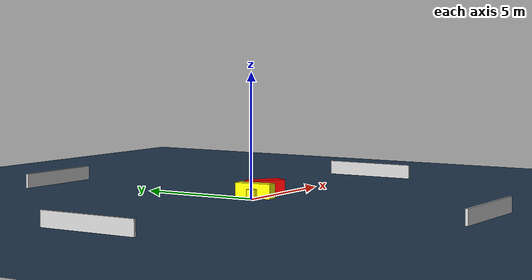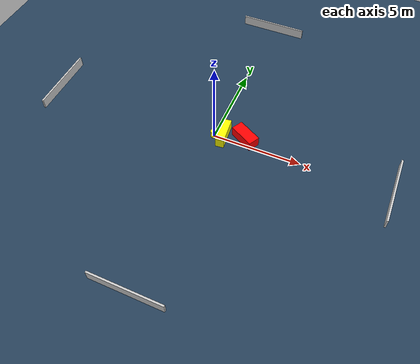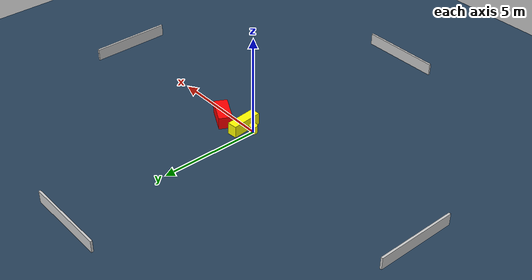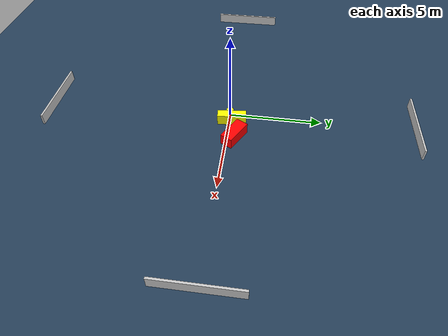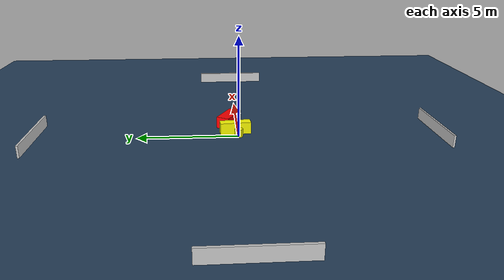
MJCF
<?xml version="1.0" ?>
<mujoco model="generated_environment">
  <option timestep="0.01" integrator="RK4" cone="elliptic"/>
  <default>
    <geom density="1"/>
  </default>
  <asset>
    <texture builtin="gradient" height="3072" name="skybox" rgb1="0.3 0.5 0.7" rgb2="0 0 0" type="skybox" width="512"/>
    <texture builtin="checker" height="300" name="groundplane" rgb1="0.2 0.3 0.4" rgb2="0.1 0.2 0.3" type="2d" width="300"/>
    <material name="groundplane" reflectance="0.2" texrepeat="5 5" texture="groundplane"/>
  </asset>
  <worldbody>
    <light dir="0 0 -1" directional="true" pos="0 0 1.5"/>
    <geom condim="3" friction="0.5 0.005 0.001" material="groundplane" name="floor" pos="0 0 0" size="0 0 0.05" type="plane"/>
    <body name="walls">
      <geom name="wall_1" condim="4" pos="-10.0 0.0 0.3" rgba="0.800000011920929 0.800000011920929 0.800000011920929 1.0" size="0.05 2.0 0.3" type="box"/>
      <geom name="wall_2" condim="4" pos="10.0 0.0 0.3" rgba="0.800000011920929 0.800000011920929 0.800000011920929 1.0" size="0.05 2.0 0.3" type="box"/>
      <geom name="wall_3" condim="4" pos="0.0 -10.0 0.3" rgba="0.800000011920929 0.800000011920929 0.800000011920929 1.0" size="2.0 0.05 0.3" type="box"/>
      <geom name="wall_4" condim="4" pos="0.0 10.0 0.3" rgba="0.800000011920929 0.800000011920929 0.800000011920929 1.0" size="2.0 0.05 0.3" type="box"/>
    </body>
    <body name="robot">
      <joint name="joint_x" type="slide" pos="0 0 0" axis="1 0 0"/>
      <joint name="joint_y" type="slide" pos="0 0 0" axis="0 1 0"/>
      <geom name="robot" type="cylinder" pos="0.0 0.0 0.2" size="0.2 0.2 0.0" mass="5.0" friction="1.0 0.005 0.0001" condim="4" rgba="1.0 1.0 0.0 1.0"/>
    </body>
    <body name="obstacle_1_movable">
      <geom name="obstacle_1_movable" condim="4" pos="0.5005333318986526 0.15162089084323863 0.3" euler="0 0 95.35947753601819" friction="0.0 0.005 0.001" rgba="1.0 1.0 0.0 1.0" size="0.7748945208501838 0.24140262283991692 0.3" type="box" mass="0.1"/>
      <joint type="free"/>
    </body>
    <body name="obstacle_2_static">
      <geom name="obstacle_2_static" condim="4" pos="1.6977145045750464 0.42545186707334465 0.3" euler="0 0 151.46799076814418" friction="0.0 0.005 0.001" rgba="1.0 0.0 0.0 1.0" size="0.7366936589140822 0.3372375302301456 0.3" type="box"/>
    </body>
  </worldbody>
  <actuator>
    <motor name="actuator_x" joint="joint_x" gear="1" ctrlrange="-1 1"/>
    <motor name="actuator_y" joint="joint_y" gear="1" ctrlrange="-1 1"/>
  </actuator>
</mujoco>
